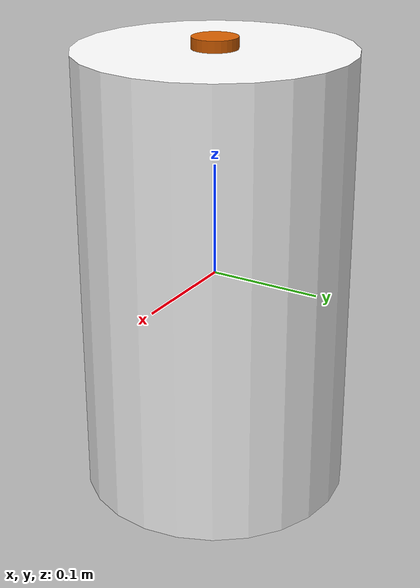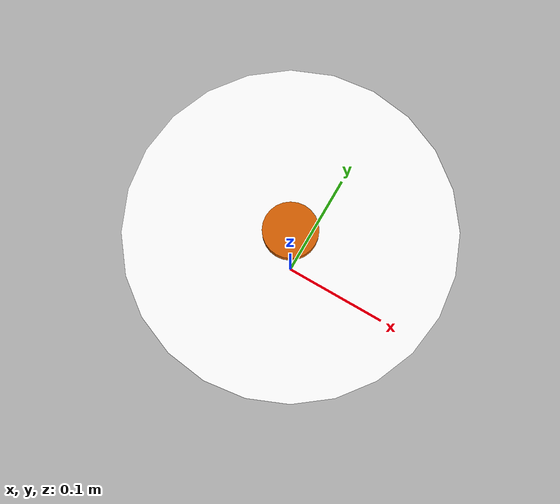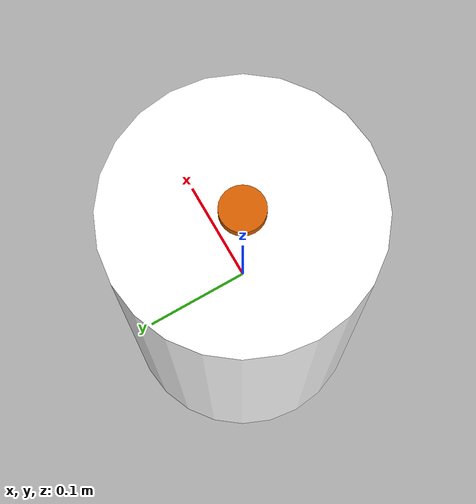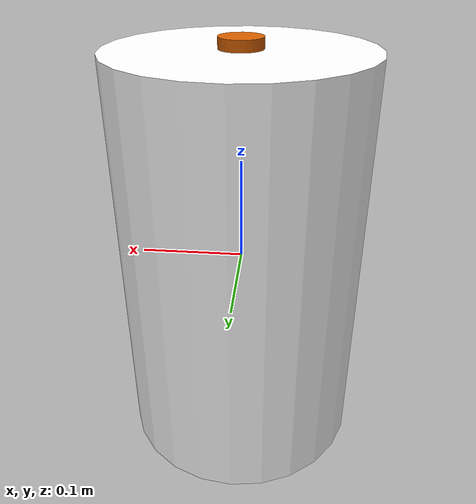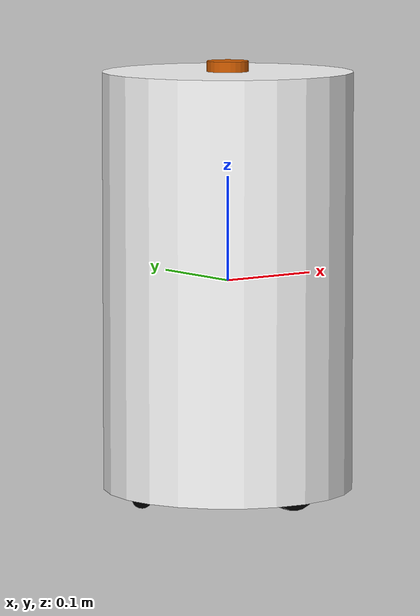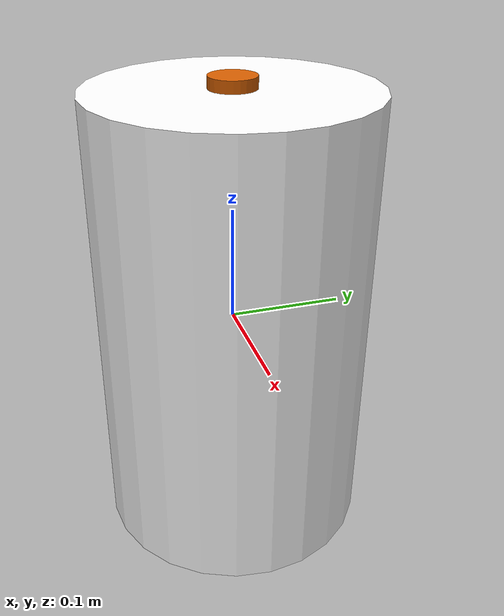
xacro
<?xml version="1.0"?>
<robot name="goldorak" xmlns:xacro="http://ros.org/wiki/xacro">

  <xacro:property name="body_radius" value="0.12" />
  <xacro:property name="body_height" value="0.4" />
  <xacro:property name="wheelbase" value="0.194" />
  <xacro:property name="wheel_radius" value="0.029" />
  <xacro:property name="wheel_thickness" value="0.01" />
  <xacro:property name="wheel_offset" value="-0.15" />
  <xacro:property name="casterbase" value="0.194" />
  <xacro:property name="caster_radius" value="0.01" />
  <xacro:property name="caster_offset" value="-0.19" />

  <xacro:include filename="$(find goldorak_description)/urdf/common.urdf.xacro" />
  <xacro:include filename="$(find goldorak_description)/urdf/wheel.urdf.xacro" />
  <xacro:include filename="$(find goldorak_description)/urdf/caster.urdf.xacro" />
  <xacro:include filename="$(find goldorak_description)/urdf/range_sensor.urdf.xacro" />

  <!-- Base link -->
  <link name="base_link">
    <visual>
      <geometry>
        <cylinder radius="${body_radius}" length="${body_height}"/>
      </geometry>
      <material name="white"/>
    </visual>
    <collision>
      <geometry>
        <cylinder radius="${body_radius}" length="${body_height}"/>
      </geometry>
    </collision>
    <inertial>
      <mass value="2" />
      <origin xyz="0 0 0.0" />
      <inertia ixx="0.01" ixy="0.0" ixz="0.0"
               iyy="0.01" iyz="0.0"
               izz="0.5" />
    </inertial>
  </link>

  <!-- Wheels -->
  <xacro:wheel prefix="right" reflect="1"/>
  <xacro:wheel prefix="left" reflect="-1"/>

  <!-- Casters -->
  <xacro:caster prefix="front" reflect="1"/>
  <xacro:caster prefix="rear" reflect="-1"/>

  <!-- Gazebo plugin for ROS Control -->
  <gazebo>
    <plugin name="gazebo_ros_control" filename="libgazebo_ros_control.so">
      <robotNamespace>/</robotNamespace>
    </plugin>
  </gazebo>

  <!-- Laser scanner 1D link -->
  <xacro:range_sensor name="laser" parent="base_link" rate="50"
                      maxRange="4.0" minRange="0.15" fov="0.1">
    <origin xyz="0 0 ${body_height / 2}" rpy="0 0 0"/>
  </xacro:range_sensor>

</robot>

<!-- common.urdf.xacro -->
<robot xmlns:xacro="http://ros.org/wiki/xacro">

  <xacro:property name="pi" value="3.1415" />

  <material name="blue">
    <color rgba="0 0 .8 1"/>
  </material>

  <material name="black">
    <color rgba="0 0 0 1"/>
  </material>

  <material name="grey">
    <color rgba="0.7 0.7 0.7 1"/>
  </material>

  <material name="white">
    <color rgba="1 1 1 1"/>
  </material>

  <xacro:macro name="default_inertial" params="mass">
    <inertial>
      <mass value="${mass}" />
      <inertia ixx="1.0" ixy="0.0" ixz="0.0"
               iyy="1.0" iyz="0.0"
               izz="1.0" />
    </inertial>
  </xacro:macro>

</robot>

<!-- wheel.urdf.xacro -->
<!-- Wheel link xacro -->
<robot xmlns:xacro="http://www.ros.org/wiki/xacro">
  <xacro:macro name="wheel" params="prefix reflect">

    <link name="${prefix}_wheel">
      <visual>
        <origin xyz="0 0 0" rpy="${pi/2} 0 0" />
        <geometry>
          <cylinder radius="${wheel_radius}" length="${wheel_thickness}"/>
        </geometry>
        <material name="black"/>
        <origin xyz="0 0 0" rpy="0 0 0" />
      </visual>
      <collision>
        <origin xyz="0 0 0" rpy="${pi/2} 0 0" />
        <geometry>
          <cylinder radius="${wheel_radius}" length="${wheel_thickness}"/>
        </geometry>
        <origin xyz="0 0 0" rpy="0 0 0" />
      </collision>
      <inertial>
          <origin xyz="0 0 0"/>
          <mass value="0.01" />
          <inertia ixx="0.001" ixy="0.0" ixz="0.0"
                   iyy="0.001" iyz="0.0"
                   izz="0.001" />
        </inertial>
    </link>
    <joint name="${prefix}_wheel_joint" type="continuous">
      <axis xyz="0 1 0" rpy="0 0 0" />
      <parent link="base_link"/>
      <child link="${prefix}_wheel"/>
      <origin xyz="0
                   ${(wheelbase + wheel_thickness) * reflect / 2}
                   ${wheel_offset - wheel_radius}"
              rpy="0 0 0"/>
    </joint>

    <!-- This block provides the simulator (Gazebo) with information on a few additional
    physical properties. See http://gazebosim.org/tutorials/?tut=ros_urdf for more-->
    <gazebo reference="${prefix}_wheel">
      <mu1>1.0</mu1>
      <mu2>1.0</mu2>
      <kp>1000000.0</kp>
      <kd>100.0</kd>
    </gazebo>

    <!-- This block connects the wheel joint to an actuator (motor), which informs both
    simulation and visualization of the robot -->
    <transmission name="${prefix}_wheel_trans" type="SimpleTransmission">
      <type>transmission_interface/SimpleTransmission</type>
      <actuator name="${prefix}_wheel_motor">
        <mechanicalReduction>1</mechanicalReduction>
      </actuator>
      <joint name="${prefix}_wheel_joint">
        <hardwareInterface>VelocityJointInterface</hardwareInterface>
      </joint>
    </transmission>

  </xacro:macro>
</robot>

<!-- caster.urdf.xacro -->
<!-- Caster link xacro -->
<robot xmlns:xacro="http://www.ros.org/wiki/xacro">
  <xacro:macro name="caster" params="prefix reflect">

    <link name="${prefix}_caster">
      <visual>
        <origin xyz="0 0 0" rpy="${pi/2} 0 0" />
        <geometry>
          <sphere radius="${caster_radius}" />
        </geometry>
        <material name="black"/>
        <origin xyz="0 0 0" rpy="0 0 0" />
      </visual>
      <collision>
        <origin xyz="0 0 0" rpy="${pi/2} 0 0" />
        <geometry>
          <sphere radius="${caster_radius}" />
        </geometry>
        <origin xyz="0 0 0" rpy="0 0 0" />
      </collision>
      <inertial>
        <origin xyz="0 0 0" />
        <mass value="0.01" />
        <inertia ixx="0.001" ixy="0.0" ixz="0.0"
                 iyy="0.001" iyz="0.0"
                 izz="0.001" />
        </inertial>
    </link>
    <joint name="${prefix}_caster_joint" type="fixed">
      <axis xyz="0 1 0" rpy="0 0 0" />
      <parent link="base_link"/>
      <child link="${prefix}_caster"/>
      <origin xyz="${(casterbase + caster_radius) * reflect / 2}
                   0
                   ${caster_offset - caster_radius}"
              rpy="0 0 0"/>
    </joint>

    <gazebo reference="${prefix}_caster">
      <mu1>0.0</mu1>
      <mu2>0.0</mu2>
      <kp>1000000.0</kp>
      <kd>100.0</kd>
      <minDepth>0.001</minDepth>
      <maxVel>1.0</maxVel>
      <material>grey</material>
    </gazebo>

  </xacro:macro>
</robot>

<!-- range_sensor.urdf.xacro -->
<robot xmlns:xacro="http://www.ros.org/wiki/xacro">
  <xacro:macro name="range_sensor" params="name parent *origin rate maxRange minRange fov">

     <link name="${name}_link">
      <collision>
        <origin xyz="0 0 0" rpy="0 0 0"/>
        <geometry>
          <cylinder radius="0.02" length="0.02"/>
        </geometry>
      </collision>

      <visual>
        <origin xyz="0 0 0" rpy="0 0 0"/>
        <geometry>
          <cylinder radius="0.02" length="0.02"/>
        </geometry>
      </visual>

      <inertial>
        <mass value="1e-5" />
        <origin xyz="0 0 0" rpy="0 0 0"/>
        <inertia ixx="1e-6" ixy="0" ixz="0"
                 iyy="1e-6" iyz="0"
                 izz="1e-6" />
      </inertial>
    </link>

    <joint name="${name}_joint" type="fixed">
      <xacro:insert_block name="origin" />
      <axis xyz="0 1 0" />
      <parent link="${parent}"/>
      <child link="${name}_link"/>
    </joint>

    <!-- Gazebo plugin for range sensor -->
    <gazebo reference="${name}_link">
      <sensor type="ray" name="${name}">
        <pose>0 0 0 0 0 0</pose>
        <update_rate>${rate}</update_rate>
        <visualize>false</visualize>
        <ray>
          <scan>
            <horizontal>
              <samples>5</samples>
              <resolution>1</resolution>
              <min_angle>-${fov/2}</min_angle>
              <max_angle>${fov/2}</max_angle>
            </horizontal>
            <vertical>
              <samples>5</samples>
              <resolution>1</resolution>
              <min_angle>-${fov/2}</min_angle>
              <max_angle>${fov/2}</max_angle>
            </vertical>
          </scan>
          <range>
            <min>${minRange}</min>
            <max>${maxRange}</max>
            <resolution>0.01</resolution>
          </range>
        </ray>
        <plugin filename="libgazebo_ros_range.so" name="gazebo_ros_range">
          <gaussianNoise>0.005</gaussianNoise>
          <alwaysOn>true</alwaysOn>
          <updateRate>${rate}</updateRate>
          <topicName>${name}/range</topicName>
          <frameName>${name}_link</frameName>
          <minRange>${minRange}</minRange>
          <maxRange>${maxRange}</maxRange>
          <fov>${fov}</fov>
        </plugin>
      </sensor>
    </gazebo>

  </xacro:macro>
</robot>
